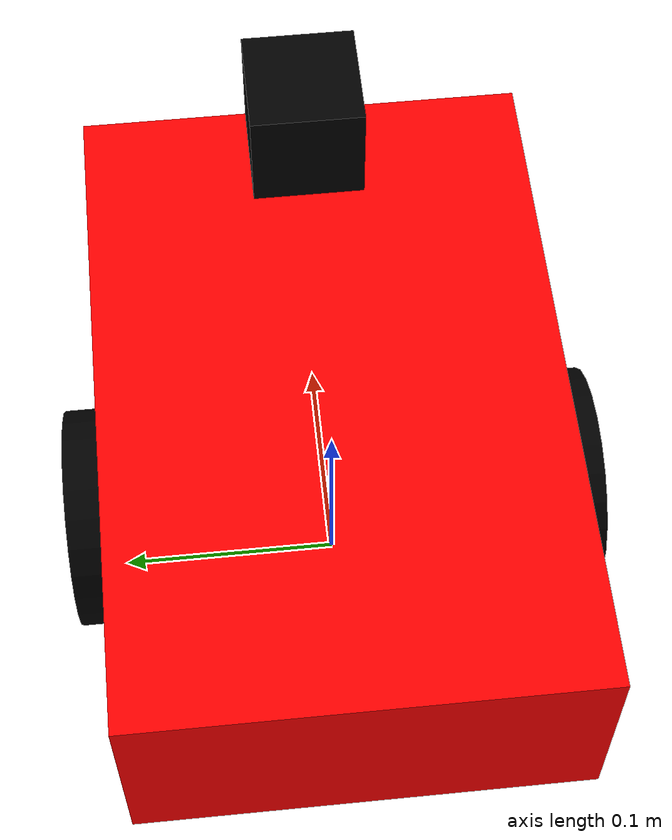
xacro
<?xml version="1.0"?>
<robot xmlns:xacro="http://ros.org/wiki/xacro" name="my_robot">

  <!-- Robot dimensions -->
  <xacro:property name="wheel_radius" value="0.05"/>
  <xacro:property name="wheel_width" value="0.02"/>
  <xacro:property name="body_length" value="0.3"/>
  <xacro:property name="body_width" value="0.2"/>
  <xacro:property name="body_height" value="0.1"/>

  <!-- Base link -->
  <link name="base_link">
    <visual>
      <origin xyz="0 0 ${wheel_radius + body_height / 2}" rpy="0 0 0"/>
      <geometry>
        <box size="${body_length} ${body_width} ${body_height}"/>
      </geometry>
      <material name="gray">
        <color rgba="1.0 0.0 0.0 1.0"/>
      </material>
    </visual>
    <collision>
      <origin xyz="0 0 ${body_height / 2}" rpy="0 0 0"/>
      <geometry>
        <box size="${body_length} ${body_width} ${body_height}"/>
      </geometry>
    </collision>
    <inertial>
      <origin xyz="0 0 ${body_height / 2}" rpy="0 0 0"/>
      <mass value="1.0"/>
      <inertia ixx="0.001" ixy="0.0" ixz="0.0"
               iyy="0.001" iyz="0.0"
               izz="0.001"/>
    </inertial>
  </link>

  <gazebo reference="base_link">
    <material>Gazebo/Red</material>
  </gazebo>

    <!-- Left wheel -->
    <link name="left_wheel">
      <visual>
        <origin xyz="0 0 0" rpy="1.5708 0 0"/>
        <geometry>
          <cylinder length="${wheel_width}" radius="${wheel_radius}"/>
        </geometry>
        <material name="black">
          <color rgba="0 0 0 1"/>
        </material>
      </visual>
      <collision>
        <origin xyz="0 0 0" rpy="1.5708 0 0"/>
        <geometry>
          <cylinder length="${wheel_width}" radius="${wheel_radius}"/>
        </geometry>
      </collision>
      <inertial>
        <origin xyz="0 0 0" rpy="0 0 0"/>
        <mass value="0.1"/>
        <inertia ixx="0.0001" ixy="0.0" ixz="0.0"
                 iyy="0.0001" iyz="0.0"
                 izz="0.0001"/>
      </inertial>
    </link>

    <gazebo reference="left_wheel">
      <material>Gazebo/Black</material>
    </gazebo>

    <!-- Right wheel -->
    <link name="right_wheel">
      <visual>
        <origin xyz="0 0 0" rpy="1.5708 0 0"/>
        <geometry>
          <cylinder length="${wheel_width}" radius="${wheel_radius}"/>
        </geometry>
        <material name="black">
          <color rgba="0 0 0 1"/>
        </material>
      </visual>
      <collision>
        <origin xyz="0 0 0" rpy="1.5708 0 0"/>
        <geometry>
          <cylinder length="${wheel_width}" radius="${wheel_radius}"/>
        </geometry>
      </collision>
      <inertial>
        <origin xyz="0 0 0" rpy="0 0 0"/>
        <mass value="0.1"/>
        <inertia ixx="0.0001" ixy="0.0" ixz="0.0"
                 iyy="0.0001" iyz="0.0"
                 izz="0.0001"/>
      </inertial>
    </link>

    <gazebo reference="right_wheel">
      <material>Gazebo/Black</material>
    </gazebo>

  <!-- Joints for wheels -->
  <!-- Left wheel joint -->
  <joint name="left_wheel_joint" type="continuous">
    <parent link="base_link"/>
    <child link="left_wheel"/>
    <origin xyz="0 ${body_width/2 + wheel_width/2} 0.05" rpy="0 0 0"/>  <!-- Changed Z from 0 to 0.05 -->
    <axis xyz="0 1 0"/>
  </joint>

<!-- Right wheel joint -->
  <joint name="right_wheel_joint" type="continuous">
    <parent link="base_link"/>
    <child link="right_wheel"/>
    <origin xyz="0 -${body_width/2 + wheel_width/2} 0.05" rpy="0 0 0"/> <!-- Changed Z from 0 to 0.05 -->
    <axis xyz="0 1 0"/>
  </joint>

  <!-- Front Caster Wheel -->

  <!-- Camera link -->
  <link name="camera_link">
    <visual>
      <origin xyz="0 0 0" rpy="0 0 0"/>
      <geometry>
        <box size="0.05 0.05 0.05"/>
      </geometry>
      <material name="black">
        <color rgba="0 0 0 1"/>
      </material>
    </visual>
  </link>

  <joint name="camera_joint" type="fixed">
    <parent link="base_link"/>
    <child link="camera_link"/>
    <origin xyz="${body_length/2 - 0.025} 0 ${1.75*body_height}" rpy="0 0 0"/>
  </joint>

  <!-- Gazebo plugin for camera -->
  <gazebo reference="camera_link">
    <sensor type="camera" name="camera_sensor">
      <always_on>true</always_on>
      <update_rate>30.0</update_rate>
      <visualize>true</visualize>
      <camera>
        <horizontal_fov>1.047</horizontal_fov>
        <image>
          <width>640</width>
          <height>480</height>
          <format>R8G8B8</format>
        </image>
        <clip>
          <near>0.1</near>
          <far>100</far>
        </clip>
      </camera>
      <plugin name="gazebo_ros_camera" filename="libgazebo_ros_camera.so">
        <ros>
          <namespace>/</namespace>
          <remapping>image_raw:=/camera/image_raw</remapping>
        </ros>
        <camera_name>camera</camera_name>
        <frame_name>camera_link</frame_name>
      </plugin>
    </sensor>
  </gazebo>
  <gazebo>
    <plugin name="diff_drive_controller" filename="libgazebo_ros_diff_drive.so">
      <ros>
        <remapping>cmd_vel:=/cmd_vel</remapping>
      </ros>
      <update_rate>100.0</update_rate>
      <left_joint>left_wheel_joint</left_joint>
      <right_joint>right_wheel_joint</right_joint>
      <wheel_separation>0.2</wheel_separation> <!-- Adjust according to your robot -->
      <wheel_diameter>0.1</wheel_diameter>
      <torque>1.0</torque>
      <command_topic>/cmd_vel</command_topic>
    </plugin>
  </gazebo>

</robot>
